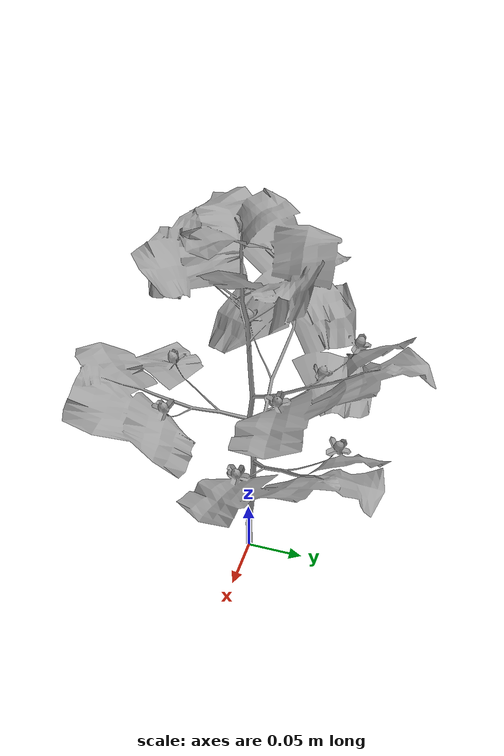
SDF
<?xml version="1.0" ?>
<sdf version="1.5">
	<model name="cotton3">
      <pose>0 0 0  0 0 0</pose>
      <static>true</static>
      <link name="body">
		<collision name="collision">
		    <geometry>
		      <mesh>
		        <uri>model://cotton3/cotton3.dae</uri>
		      </mesh>
		    </geometry>
      	</collision>
        <visual name="visual">
          <geometry>
            <mesh><uri>model://cotton3/cotton3.dae</uri></mesh>
          </geometry>
        </visual>
      </link>
    </model>
</sdf>
